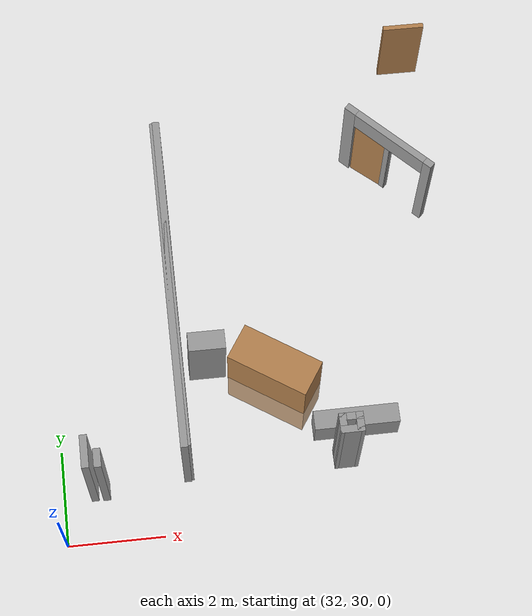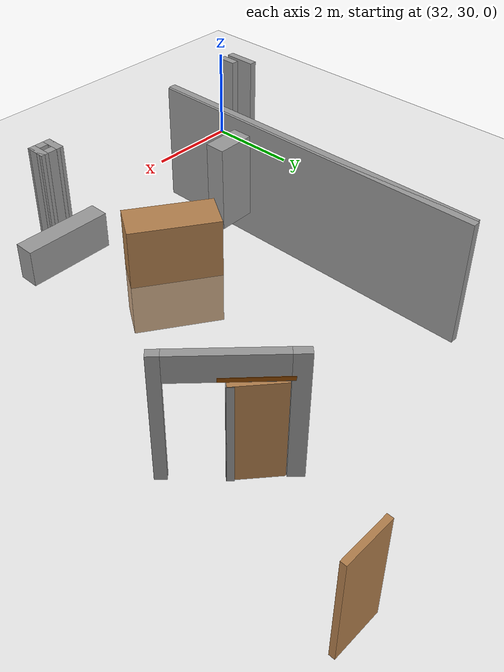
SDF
<sdf version="1.6">
 <world name="default">
  <model name="ground_plane">
   <static>1</static>
   <link name="link">
    <collision name="collision">
     <geometry><plane><normal>0 0 1</normal><size>100 100</size></plane></geometry>
     <surface><friction><ode><mu>100</mu><mu2>50</mu2></ode></friction></surface>
    </collision>
    <visual name="visual">
     <cast_shadows>0</cast_shadows>
     <geometry><plane><normal>0 0 1</normal><size>100 100</size></plane></geometry>
     <material>
      <script><uri>file://media/materials/scripts/gazebo.material</uri><name>Gazebo/Grey</name></script>
     </material>
    </visual>
   </link>
  </model>
  <model name="CVSSP">
   <pose>23.8714 24.094 0 0 -0 0</pose>
   <link name="Wall_1">
    <pose>15.5976 13.2926 0 0 0 -0.785398</pose>
    <visual name="Wall_1_Visual_0">
     <pose>-0.986494 0 1.25 0 -0 0</pose>
     <geometry><box><size>0.277012 0.15 2.5</size></box></geometry>
     <material>
      <script><uri>file://media/materials/scripts/gazebo.material</uri><name>Gazebo/Grey</name></script>
      <ambient>0.588235 0.588235 0.588235 1</ambient>
     </material>
    </visual>
    <collision name="Wall_1_Collision_0">
     <geometry><box><size>0.277012 0.15 2.5</size></box></geometry>
     <pose>-0.986494 0 1.25 0 -0 0</pose>
    </collision>
    <visual name="Wall_1_Visual_1">
     <pose>1.02335 0 1.25 0 -0 0</pose>
     <geometry><box><size>0.203299 0.15 2.5</size></box></geometry>
     <material>
      <script><uri>file://media/materials/scripts/gazebo.material</uri><name>Gazebo/Grey</name></script>
      <ambient>0.588235 0.588235 0.588235 1</ambient>
     </material>
    </visual>
    <collision name="Wall_1_Collision_1">
     <geometry><box><size>0.203299 0.15 2.5</size></box></geometry>
     <pose>1.02335 0 1.25 0 -0 0</pose>
    </collision>
    <visual name="Wall_1_Visual_2">
     <pose>0.036857 0 2.25 0 -0 0</pose>
     <geometry><box><size>1.76969 0.15 0.5</size></box></geometry>
     <material>
      <script><uri>file://media/materials/scripts/gazebo.material</uri><name>Gazebo/Grey</name></script>
      <ambient>0.588235 0.588235 0.588235 1</ambient>
     </material>
    </visual>
    <collision name="Wall_1_Collision_2">
     <geometry><box><size>1.76969 0.15 0.5</size></box></geometry>
     <pose>0.036857 0 2.25 0 -0 0</pose>
    </collision>
   </link>
   <link name="Wall_41">
    <collision name="Wall_41_Collision">
     <geometry><box><size>0.67 0.15 2.5</size></box></geometry>
     <pose>0 0 1.25 0 -0 0</pose>
    </collision>
    <visual name="Wall_41_Visual">
     <pose>0 0 1.25 0 -0 0</pose>
     <geometry><box><size>0.67 0.15 2.5</size></box></geometry>
     <material>
      <script><uri>file://media/materials/scripts/gazebo.material</uri><name>Gazebo/Grey</name></script>
      <ambient>1 1 1 1</ambient>
     </material>
    </visual>
    <pose>8.7575 7.13868 0 0 0 -1.5708</pose>
   </link>
   <link name="Wall_45">
    <collision name="Wall_45_Collision">
     <geometry><box><size>0.380217 0.15 2.5</size></box></geometry>
     <pose>0 0 1.25 0 -0 0</pose>
    </collision>
    <visual name="Wall_45_Visual">
     <pose>0 0 1.25 0 -0 0</pose>
     <geometry><box><size>0.380217 0.15 2.5</size></box></geometry>
     <material>
      <script><uri>file://media/materials/scripts/gazebo.material</uri><name>Gazebo/Grey</name></script>
      <ambient>1 1 1 1</ambient>
     </material>
    </visual>
    <pose>8.9975 6.98369 0 0 0 -1.5708</pose>
   </link>
   <link name="Wall_48">
    <collision name="Wall_48_Collision">
     <geometry><box><size>0.485616 0.15 2.5</size></box></geometry>
     <pose>0 0 1.25 0 -0 0</pose>
    </collision>
    <visual name="Wall_48_Visual">
     <pose>0 0 1.25 0 -0 0</pose>
     <geometry><box><size>0.485616 0.15 2.5</size></box></geometry>
     <material>
      <script><uri>file://media/materials/scripts/gazebo.material</uri><name>Gazebo/Grey</name></script>
      <ambient>1 1 1 1</ambient>
     </material>
    </visual>
    <pose>13.9944 7.29164 0 0 0 -0.000129</pose>
   </link>
   <link name="Wall_49">
    <collision name="Wall_49_Collision">
     <geometry><box><size>0.405637 0.15 2.5</size></box></geometry>
     <pose>0 0 1.25 0 -0 0</pose>
    </collision>
    <visual name="Wall_49_Visual">
     <pose>0 0 1.25 0 -0 0</pose>
     <geometry><box><size>0.405637 0.15 2.5</size></box></geometry>
     <material>
      <script><uri>file://media/materials/scripts/gazebo.material</uri><name>Gazebo/Grey</name></script>
      <ambient>1 1 1 1</ambient>
     </material>
    </visual>
    <pose>14.162 7.1638 0 0 0 -1.57228</pose>
   </link>
   <link name="Wall_50">
    <collision name="Wall_50_Collision">
     <geometry><box><size>0.483145 0.15 2.5</size></box></geometry>
     <pose>0 0 1.25 0 -0 0</pose>
    </collision>
    <visual name="Wall_50_Visual">
     <pose>0 0 1.25 0 -0 0</pose>
     <geometry><box><size>0.483145 0.15 2.5</size></box></geometry>
     <material>
      <script><uri>file://media/materials/scripts/gazebo.material</uri><name>Gazebo/Grey</name></script>
      <ambient>1 1 1 1</ambient>
     </material>
    </visual>
    <pose>13.9952 7.03593 0 0 0 -3.14129</pose>
   </link>
   <link name="Wall_51">
    <collision name="Wall_51_Collision">
     <geometry><box><size>0.405791 0.15 2.5</size></box></geometry>
     <pose>0 0 1.25 0 -0 0</pose>
    </collision>
    <visual name="Wall_51_Visual">
     <pose>0 0 1.25 0 -0 0</pose>
     <geometry><box><size>0.405791 0.15 2.5</size></box></geometry>
     <material>
      <script><uri>file://media/materials/scripts/gazebo.material</uri><name>Gazebo/Grey</name></script>
      <ambient>1 1 1 1</ambient>
     </material>
    </visual>
    <pose>13.8276 7.16378 0 0 -0 1.5792</pose>
   </link>
   <link name="Wall_53">
    <collision name="Wall_53_Collision">
     <geometry><box><size>7.09358 0.15 2.5</size></box></geometry>
     <pose>0 0 1.25 0 -0 0</pose>
    </collision>
    <visual name="Wall_53_Visual">
     <pose>0 0 1.25 0 -0 0</pose>
     <geometry><box><size>7.09358 0.15 2.5</size></box></geometry>
     <material>
      <script><uri>file://media/materials/scripts/gazebo.material</uri><name>Gazebo/Grey</name></script>
      <ambient>1 1 1 1</ambient>
     </material>
    </visual>
    <pose>10.7501 10.5821 0 0 0 -1.5708</pose>
   </link>
   <link name="Wall_60">
    <collision name="Wall_60_Collision">
     <geometry><box><size>7.09041 0.15 2.5</size></box></geometry>
     <pose>0 0 1.25 0 -0 0</pose>
    </collision>
    <visual name="Wall_60_Visual">
     <pose>0 0 1.25 0 -0 0</pose>
     <geometry><box><size>7.09041 0.15 2.5</size></box></geometry>
     <material>
      <script><uri>file://media/materials/scripts/gazebo.material</uri><name>Gazebo/Grey</name></script>
      <ambient>0.588235 0.588235 0.588235 1</ambient>
     </material>
    </visual>
    <pose>10.6949 10.5553 0 0 0 -1.57007</pose>
   </link>
   <static>1</static>
  </model>
  <model name="Basic_ply_door">
   <link name="link">
    <pose>1.20031 2.43241 0.995323 -0 -0 -0.009284</pose>
    <inertial>
     <mass>0.5167</mass>
     <inertia>
      <ixx>0.00086117</ixx>
      <ixy>0</ixy>
      <ixz>0</ixz>
      <iyy>0.00086117</iyy>
      <iyz>0</iyz>
      <izz>0.00086117</izz>
     </inertia>
    </inertial>
    <gravity>0</gravity>
    <visual name="visual">
     <geometry><box><size>0.88 0.1 1.96</size></box></geometry>
     <material>
      <script><uri>file://media/materials/scripts/gazebo.material</uri><name>Gazebo/Wood</name></script>
      <shader type="pixel"><normal_map>__default__</normal_map></shader>
      <ambient>1 1 1 1</ambient>
      <diffuse>1 1 1 1</diffuse>
      <specular>0.2 0.2 0.2 1</specular>
      <emissive>0 0 0 1</emissive>
     </material>
    </visual>
    <collision name="collision">
     <geometry><box><size>0.88 0.1 1.96</size></box></geometry>
     <surface>
      <friction>
       <ode><mu>1</mu><mu2>1</mu2><fdir1>0 0 0</fdir1><slip1>0</slip1><slip2>0</slip2></ode>
       <torsional>
        <coefficient>1</coefficient>
        <patch_radius>0</patch_radius>
        <surface_radius>0.01</surface_radius>
        <use_patch_radius>0</use_patch_radius>
        <ode><slip>0</slip></ode>
       </torsional>
      </friction>
      <bounce><restitution_coefficient>0</restitution_coefficient><threshold>1e+06</threshold></bounce>
      <contact>
       <collide_without_contact>0</collide_without_contact>
       <collide_without_contact_bitmask>1</collide_without_contact_bitmask>
       <collide_bitmask>1</collide_bitmask>
       <ode>
        <soft_cfm>0</soft_cfm>
        <soft_erp>0.2</soft_erp>
        <kp>100000</kp>
        <kd>100</kd>
        <max_vel>100</max_vel>
        <min_depth>0.001</min_depth>
       </ode>
       <bullet>
        <split_impulse>1</split_impulse>
        <split_impulse_penetration_threshold>-0.01</split_impulse_penetration_threshold>
        <soft_cfm>0</soft_cfm>
        <soft_erp>0.2</soft_erp>
        <kp>100000</kp>
        <kd>100</kd>
       </bullet>
      </contact>
     </surface>
    </collision>
   </link>
   <static>1</static>
   <pose>39.0212 37.8356 -0.001013 0 -0 0</pose>
  </model>
  <model name="basic_ply_door_corrected_clone_clone_clone_0">
   <link name="link">
    <pose>-0 0 1.00385 0 -0 0</pose>
    <inertial>
     <mass>0.5167</mass>
     <inertia>
      <ixx>0.00086117</ixx>
      <ixy>0</ixy>
      <ixz>0</ixz>
      <iyy>0.00086117</iyy>
      <iyz>0</iyz>
      <izz>0.00086117</izz>
     </inertia>
    </inertial>
    <gravity>0</gravity>
    <visual name="visual">
     <geometry><box><size>0.88 0.1 1.96</size></box></geometry>
     <material>
      <script><uri>file://media/materials/scripts/gazebo.material</uri><name>Gazebo/Wood</name></script>
      <shader type="pixel"><normal_map>__default__</normal_map></shader>
      <ambient>1 1 1 1</ambient>
      <diffuse>1 1 1 1</diffuse>
      <specular>0.2 0.2 0.2 1</specular>
      <emissive>0 0 0 1</emissive>
     </material>
    </visual>
    <collision name="collision">
     <geometry><box><size>0.88 0.1 1.96</size></box></geometry>
     <surface>
      <friction>
       <ode><mu>1</mu><mu2>1</mu2><fdir1>0 0 0</fdir1><slip1>0</slip1><slip2>0</slip2></ode>
       <torsional>
        <coefficient>1</coefficient>
        <patch_radius>0</patch_radius>
        <surface_radius>0.01</surface_radius>
        <use_patch_radius>0</use_patch_radius>
        <ode><slip>0</slip></ode>
       </torsional>
      </friction>
      <bounce><restitution_coefficient>0</restitution_coefficient><threshold>1e+06</threshold></bounce>
      <contact>
       <collide_without_contact>0</collide_without_contact>
       <collide_without_contact_bitmask>1</collide_without_contact_bitmask>
       <collide_bitmask>1</collide_bitmask>
       <ode>
        <soft_cfm>0</soft_cfm>
        <soft_erp>0.2</soft_erp>
        <kp>100000</kp>
        <kd>100</kd>
        <max_vel>100</max_vel>
        <min_depth>0.001</min_depth>
       </ode>
       <bullet>
        <split_impulse>1</split_impulse>
        <split_impulse_penetration_threshold>-0.01</split_impulse_penetration_threshold>
        <soft_cfm>0</soft_cfm>
        <soft_erp>0.2</soft_erp>
        <kp>100000</kp>
        <kd>100</kd>
       </bullet>
      </contact>
     </surface>
    </collision>
   </link>
   <static>1</static>
   <pose>39.2213 37.6969 -0.013611 -0.006074 -0.001069 -0.713436</pose>
  </model>
  <model name="plastic_box_0_clone_0_clone">
   <link name="Wall">
    <pose>0 0 0.1985 0 -0 0</pose>
    <inertial>
     <mass>5</mass>
     <inertia><ixx>0.1022</ixx><iyy>0.4107</iyy><izz>0.3815</izz><ixy>0</ixy><ixz>0</ixz><iyz>0</iyz></inertia>
    </inertial>
    <gravity>0</gravity>
    <visual name="Wall_Visual">
     <geometry><box><size>1.75 0.4 0.75</size></box></geometry>
     <material>
      <script><uri>file://media/materials/scripts/gazebo.material</uri><name>Gazebo/Grey</name></script>
      <ambient>1 1 1 1</ambient>
      <shader type="pixel"><normal_map>__default__</normal_map></shader>
      <diffuse>0.7 0.7 0.7 1</diffuse>
      <specular>0.01 0.01 0.01 1</specular>
      <emissive>0 0 0 1</emissive>
     </material>
    </visual>
    <collision name="Wall_Collision">
     <geometry><box><size>1.75 0.4 0.75</size></box></geometry>
     <surface>
      <friction>
       <ode><mu>1</mu><mu2>1</mu2><fdir1>0 0 0</fdir1><slip1>0</slip1><slip2>0</slip2></ode>
       <torsional>
        <coefficient>1</coefficient>
        <patch_radius>0</patch_radius>
        <surface_radius>0</surface_radius>
        <use_patch_radius>1</use_patch_radius>
        <ode><slip>0</slip></ode>
       </torsional>
      </friction>
      <bounce><restitution_coefficient>0</restitution_coefficient><threshold>1e+06</threshold></bounce>
      <contact>
       <collide_without_contact>0</collide_without_contact>
       <collide_without_contact_bitmask>1</collide_without_contact_bitmask>
       <collide_bitmask>1</collide_bitmask>
       <ode>
        <soft_cfm>0</soft_cfm>
        <soft_erp>0.2</soft_erp>
        <kp>1e+13</kp>
        <kd>1</kd>
        <max_vel>0.01</max_vel>
        <min_depth>0</min_depth>
       </ode>
       <bullet>
        <split_impulse>1</split_impulse>
        <split_impulse_penetration_threshold>-0.01</split_impulse_penetration_threshold>
        <soft_cfm>0</soft_cfm>
        <soft_erp>0.2</soft_erp>
        <kp>1e+13</kp>
        <kd>1</kd>
       </bullet>
      </contact>
     </surface>
    </collision>
   </link>
   <static>1</static>
   <pose>38.1149 31.8033 0.519923 0 -0 0</pose>
  </model>
  <model name="metal_hinge_clone_0">
   <link name="link">
    <inertial>
     <mass>1</mass>
     <inertia>
      <ixx>0.166667</ixx>
      <ixy>0</ixy>
      <ixz>0</ixz>
      <iyy>0.166667</iyy>
      <iyz>0</iyz>
      <izz>0.166667</izz>
     </inertia>
    </inertial>
    <visual name="visual">
     <geometry><box><size>0.018685 0.118108 1.95261</size></box></geometry>
     <material>
      <script><name>Gazebo/Grey</name><uri>file://media/materials/scripts/gazebo.material</uri></script>
      <shader type="pixel"/>
     </material>
    </visual>
    <collision name="collision">
     <geometry><box><size>0.018685 0.118108 1.95261</size></box></geometry>
     <surface>
      <friction>
       <ode><mu>1</mu><mu2>1</mu2><fdir1>0 0 0</fdir1><slip1>0</slip1><slip2>0</slip2></ode>
       <torsional>
        <coefficient>1</coefficient>
        <patch_radius>0</patch_radius>
        <surface_radius>0</surface_radius>
        <use_patch_radius>1</use_patch_radius>
        <ode><slip>0</slip></ode>
       </torsional>
      </friction>
      <bounce><restitution_coefficient>0</restitution_coefficient><threshold>1e+06</threshold></bounce>
      <contact>
       <collide_without_contact>0</collide_without_contact>
       <collide_without_contact_bitmask>1</collide_without_contact_bitmask>
       <collide_bitmask>1</collide_bitmask>
       <ode>
        <soft_cfm>0</soft_cfm>
        <soft_erp>0.2</soft_erp>
        <kp>1e+13</kp>
        <kd>1</kd>
        <max_vel>0.01</max_vel>
        <min_depth>0</min_depth>
       </ode>
       <bullet>
        <split_impulse>1</split_impulse>
        <split_impulse_penetration_threshold>-0.01</split_impulse_penetration_threshold>
        <soft_cfm>0</soft_cfm>
        <soft_erp>0.2</soft_erp>
        <kp>1e+13</kp>
        <kd>1</kd>
       </bullet>
      </contact>
     </surface>
    </collision>
   </link>
   <static>1</static>
   <pose>39.5542 37.4047 0.981251 0 0 -0.77044</pose>
  </model>
  <model name="metal_hinge_clone_1">
   <link name="link">
    <inertial>
     <mass>1</mass>
     <inertia>
      <ixx>0.166667</ixx>
      <ixy>0</ixy>
      <ixz>0</ixz>
      <iyy>0.166667</iyy>
      <iyz>0</iyz>
      <izz>0.166667</izz>
     </inertia>
    </inertial>
    <visual name="visual">
     <geometry><box><size>0.018685 0.118108 1.95261</size></box></geometry>
     <material>
      <script><name>Gazebo/Grey</name><uri>file://media/materials/scripts/gazebo.material</uri></script>
      <shader type="pixel"/>
     </material>
    </visual>
    <collision name="collision">
     <geometry><box><size>0.018685 0.118108 1.95261</size></box></geometry>
     <surface>
      <friction>
       <ode><mu>1</mu><mu2>1</mu2><fdir1>0 0 0</fdir1><slip1>0</slip1><slip2>0</slip2></ode>
       <torsional>
        <coefficient>1</coefficient>
        <patch_radius>0</patch_radius>
        <surface_radius>0</surface_radius>
        <use_patch_radius>1</use_patch_radius>
        <ode><slip>0</slip></ode>
       </torsional>
      </friction>
      <bounce><restitution_coefficient>0</restitution_coefficient><threshold>1e+06</threshold></bounce>
      <contact>
       <collide_without_contact>0</collide_without_contact>
       <collide_without_contact_bitmask>1</collide_without_contact_bitmask>
       <collide_bitmask>1</collide_bitmask>
       <ode>
        <soft_cfm>0</soft_cfm>
        <soft_erp>0.2</soft_erp>
        <kp>1e+13</kp>
        <kd>1</kd>
        <max_vel>0.01</max_vel>
        <min_depth>0</min_depth>
       </ode>
       <bullet>
        <split_impulse>1</split_impulse>
        <split_impulse_penetration_threshold>-0.01</split_impulse_penetration_threshold>
        <soft_cfm>0</soft_cfm>
        <soft_erp>0.2</soft_erp>
        <kp>1e+13</kp>
        <kd>1</kd>
       </bullet>
      </contact>
     </surface>
    </collision>
   </link>
   <static>1</static>
   <pose>39.5516 37.4866 0.984523 0 -0 0.79018</pose>
  </model>
  <model name="metal_hinge_clone_1_clone">
   <link name="link">
    <inertial>
     <mass>1</mass>
     <inertia>
      <ixx>0.166667</ixx>
      <ixy>0</ixy>
      <ixz>0</ixz>
      <iyy>0.166667</iyy>
      <iyz>0</iyz>
      <izz>0.166667</izz>
     </inertia>
    </inertial>
    <visual name="visual">
     <geometry><box><size>0.018685 0.118108 1.95261</size></box></geometry>
     <material>
      <script><name>Gazebo/Grey</name><uri>file://media/materials/scripts/gazebo.material</uri></script>
      <shader type="pixel"/>
     </material>
    </visual>
    <collision name="collision">
     <geometry><box><size>0.018685 0.118108 1.95261</size></box></geometry>
     <surface>
      <friction>
       <ode><mu>1</mu><mu2>1</mu2><fdir1>0 0 0</fdir1><slip1>0</slip1><slip2>0</slip2></ode>
       <torsional>
        <coefficient>1</coefficient>
        <patch_radius>0</patch_radius>
        <surface_radius>0</surface_radius>
        <use_patch_radius>1</use_patch_radius>
        <ode><slip>0</slip></ode>
       </torsional>
      </friction>
      <bounce><restitution_coefficient>0</restitution_coefficient><threshold>1e+06</threshold></bounce>
      <contact>
       <collide_without_contact>0</collide_without_contact>
       <collide_without_contact_bitmask>1</collide_without_contact_bitmask>
       <collide_bitmask>1</collide_bitmask>
       <ode>
        <soft_cfm>0</soft_cfm>
        <soft_erp>0.2</soft_erp>
        <kp>1e+13</kp>
        <kd>1</kd>
        <max_vel>0.01</max_vel>
        <min_depth>0</min_depth>
       </ode>
       <bullet>
        <split_impulse>1</split_impulse>
        <split_impulse_penetration_threshold>-0.01</split_impulse_penetration_threshold>
        <soft_cfm>0</soft_cfm>
        <soft_erp>0.2</soft_erp>
        <kp>1e+13</kp>
        <kd>1</kd>
       </bullet>
      </contact>
     </surface>
    </collision>
   </link>
   <static>1</static>
   <pose>39.4723 37.4144 0.984523 0 -0 0.79018</pose>
  </model>
  <model name="oak_frame_0_clone_0_clone_8_clone_0_clone">
   <link name="link">
    <inertial>
     <mass>1</mass>
     <inertia>
      <ixx>0.166667</ixx>
      <ixy>0</ixy>
      <ixz>0</ixz>
      <iyy>0.166667</iyy>
      <iyz>0</iyz>
      <izz>0.166667</izz>
     </inertia>
    </inertial>
    <visual name="visual">
     <geometry><box><size>0.018685 0.076446 1.08038</size></box></geometry>
     <material>
      <script><name>Gazebo/Grey</name><uri>file://media/materials/scripts/gazebo.material</uri></script>
      <shader type="pixel"><normal_map>__default__</normal_map></shader>
      <diffuse>0.58 0.29 0 0</diffuse>
      <ambient>0.58 0.29 0 1</ambient>
      <specular>0.01 0.01 0.01 1</specular>
      <emissive>0 0 0 1</emissive>
     </material>
    </visual>
    <collision name="collision">
     <geometry><box><size>0.018685 0.076446 1.08038</size></box></geometry>
     <surface>
      <friction>
       <ode><mu>1</mu><mu2>1</mu2><fdir1>0 0 0</fdir1><slip1>0</slip1><slip2>0</slip2></ode>
       <torsional>
        <coefficient>1</coefficient>
        <patch_radius>0</patch_radius>
        <surface_radius>0</surface_radius>
        <use_patch_radius>1</use_patch_radius>
        <ode><slip>0</slip></ode>
       </torsional>
      </friction>
      <bounce><restitution_coefficient>0</restitution_coefficient><threshold>1e+06</threshold></bounce>
      <contact>
       <collide_without_contact>0</collide_without_contact>
       <collide_without_contact_bitmask>1</collide_without_contact_bitmask>
       <collide_bitmask>1</collide_bitmask>
       <ode>
        <soft_cfm>0</soft_cfm>
        <soft_erp>0.2</soft_erp>
        <kp>1e+13</kp>
        <kd>1</kd>
        <max_vel>0.01</max_vel>
        <min_depth>0</min_depth>
       </ode>
       <bullet>
        <split_impulse>1</split_impulse>
        <split_impulse_penetration_threshold>-0.01</split_impulse_penetration_threshold>
        <soft_cfm>0</soft_cfm>
        <soft_erp>0.2</soft_erp>
        <kp>1e+13</kp>
        <kd>1</kd>
       </bullet>
      </contact>
     </surface>
    </collision>
   </link>
   <static>1</static>
   <pose>39.2592 37.7027 2.05052 -1.58389 0.01298 -2.3603</pose>
  </model>
  <model name="plastic_box_0_clone_0_clone_clone">
   <link name="Wall">
    <pose>0 0 0.1985 0 -0 0</pose>
    <inertial>
     <mass>5</mass>
     <inertia><ixx>0.1022</ixx><iyy>0.4107</iyy><izz>0.3815</izz><ixy>0</ixy><ixz>0</ixz><iyz>0</iyz></inertia>
    </inertial>
    <gravity>0</gravity>
    <visual name="Wall_Visual">
     <geometry><box><size>1.75 0.4 0.75</size></box></geometry>
     <material>
      <script><uri>file://media/materials/scripts/gazebo.material</uri><name>Gazebo/Grey</name></script>
      <ambient>1 1 1 1</ambient>
      <shader type="pixel"><normal_map>__default__</normal_map></shader>
      <diffuse>0.7 0.7 0.7 1</diffuse>
      <specular>0.01 0.01 0.01 1</specular>
      <emissive>0 0 0 1</emissive>
     </material>
    </visual>
    <collision name="Wall_Collision">
     <geometry><box><size>1.75 0.4 0.75</size></box></geometry>
     <surface>
      <friction>
       <ode><mu>1</mu><mu2>1</mu2><fdir1>0 0 0</fdir1><slip1>0</slip1><slip2>0</slip2></ode>
       <torsional>
        <coefficient>1</coefficient>
        <patch_radius>0</patch_radius>
        <surface_radius>0</surface_radius>
        <use_patch_radius>1</use_patch_radius>
        <ode><slip>0</slip></ode>
       </torsional>
      </friction>
      <bounce><restitution_coefficient>0</restitution_coefficient><threshold>1e+06</threshold></bounce>
      <contact>
       <collide_without_contact>0</collide_without_contact>
       <collide_without_contact_bitmask>1</collide_without_contact_bitmask>
       <collide_bitmask>1</collide_bitmask>
       <ode>
        <soft_cfm>0</soft_cfm>
        <soft_erp>0.2</soft_erp>
        <kp>1e+13</kp>
        <kd>1</kd>
        <max_vel>0.01</max_vel>
        <min_depth>0</min_depth>
       </ode>
       <bullet>
        <split_impulse>1</split_impulse>
        <split_impulse_penetration_threshold>-0.01</split_impulse_penetration_threshold>
        <soft_cfm>0</soft_cfm>
        <soft_erp>0.2</soft_erp>
        <kp>1e+13</kp>
        <kd>1</kd>
       </bullet>
      </contact>
     </surface>
    </collision>
   </link>
   <static>1</static>
   <pose>35.3943 33.3053 1.47097 0 -1.55363 0</pose>
  </model>
  <model name="ply_wood_desk">
   <link name="link">
    <pose>0 0 0.05 0 -0 0</pose>
    <inertial>
     <mass>0.5167</mass>
     <inertia>
      <ixx>0.00086117</ixx>
      <ixy>0</ixy>
      <ixz>0</ixz>
      <iyy>0.00086117</iyy>
      <iyz>0</iyz>
      <izz>0.00086117</izz>
     </inertia>
    </inertial>
    <visual name="visual">
     <geometry><box><size>1.8 0.8 2.4</size></box></geometry>
     <material>
      <script><uri>file://media/materials/scripts/gazebo.material</uri><name>Gazebo/Wood</name></script>
      <shader type="pixel"><normal_map>__default__</normal_map></shader>
      <ambient>1 1 1 1</ambient>
      <diffuse>1 1 1 1</diffuse>
      <specular>0.2 0.2 0.2 1</specular>
      <emissive>0 0 0 1</emissive>
     </material>
    </visual>
    <collision name="collision">
     <geometry><box><size>0.1 0.1 0.1</size></box></geometry>
     <surface>
      <friction>
       <ode><mu>1</mu><mu2>1</mu2><fdir1>0 0 0</fdir1><slip1>0</slip1><slip2>0</slip2></ode>
       <torsional>
        <coefficient>1</coefficient>
        <patch_radius>0</patch_radius>
        <surface_radius>0.01</surface_radius>
        <use_patch_radius>0</use_patch_radius>
        <ode><slip>0</slip></ode>
       </torsional>
      </friction>
      <bounce><restitution_coefficient>0</restitution_coefficient><threshold>1e+06</threshold></bounce>
      <contact>
       <collide_without_contact>0</collide_without_contact>
       <collide_without_contact_bitmask>1</collide_without_contact_bitmask>
       <collide_bitmask>1</collide_bitmask>
       <ode>
        <soft_cfm>0</soft_cfm>
        <soft_erp>0.2</soft_erp>
        <kp>100000</kp>
        <kd>100</kd>
        <max_vel>100</max_vel>
        <min_depth>0.001</min_depth>
       </ode>
       <bullet>
        <split_impulse>1</split_impulse>
        <split_impulse_penetration_threshold>-0.01</split_impulse_penetration_threshold>
        <soft_cfm>0</soft_cfm>
        <soft_erp>0.2</soft_erp>
        <kp>100000</kp>
        <kd>100</kd>
       </bullet>
      </contact>
     </surface>
    </collision>
   </link>
   <static>1</static>
   <pose>36.5893 33.1415 0 0 0 -0.58099</pose>
  </model>
 </world>
</sdf>
